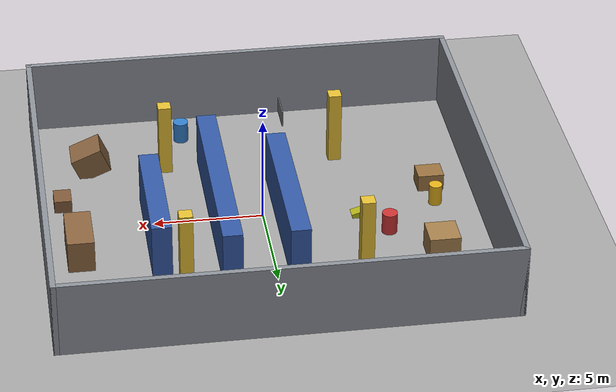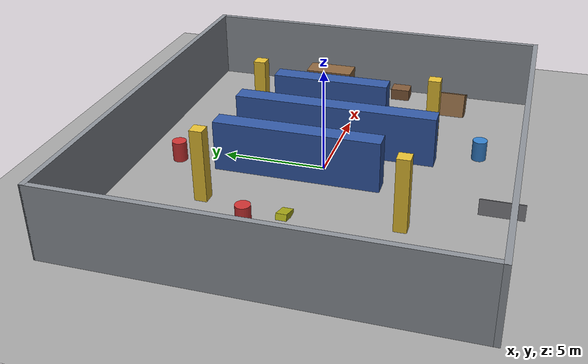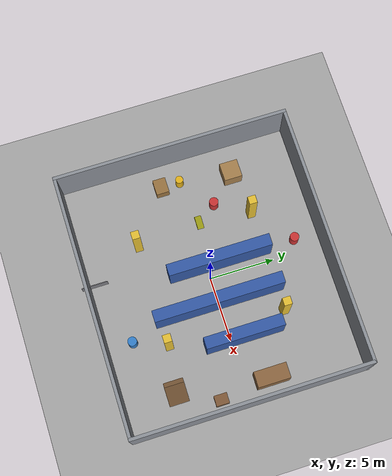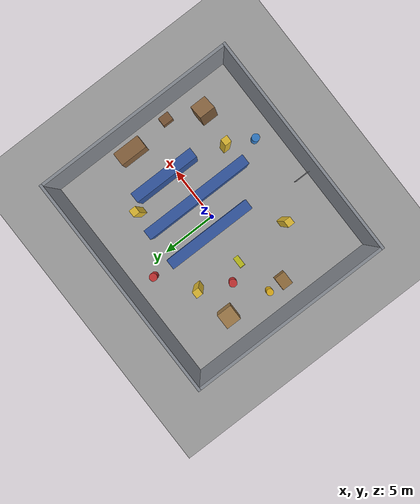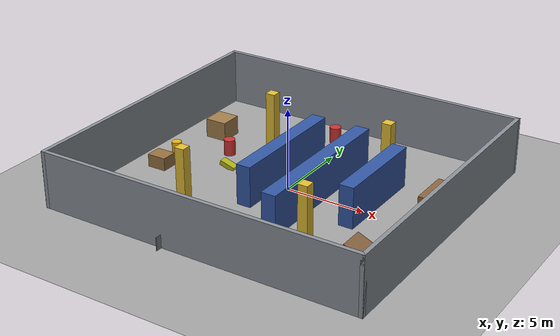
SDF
<?xml version="1.0"?>
<sdf version="1.8">
  <world name="warehouse_world">
    <physics type="ode">
      <real_time_update_rate>1000.0</real_time_update_rate>
      <max_step_size>0.001</max_step_size>
      <real_time_factor>1.0</real_time_factor>
      <ode>
        <solver>
          <type>quick</type>
          <iters>150</iters>
          <precon_iters>0</precon_iters>
          <sor>1.4</sor>
          <use_dynamic_moi_rescaling>1</use_dynamic_moi_rescaling>
        </solver>
        <constraints>
          <cfm>0.00001</cfm>
          <erp>0.2</erp>
          <contact_max_correcting_vel>2000.0</contact_max_correcting_vel>
          <contact_surface_layer>0.01</contact_surface_layer>
        </constraints>
      </ode>
    </physics>

    <!-- Essential Gazebo Plugins for Simulation -->
    <plugin filename="gz-sim-physics-system" name="gz::sim::systems::Physics"/>
    <plugin filename="gz-sim-user-commands-system" name="gz::sim::systems::UserCommands"/>
    <plugin filename="gz-sim-scene-broadcaster-system" name="gz::sim::systems::SceneBroadcaster"/>
    <plugin filename="gz-sim-sensors-system" name="gz::sim::systems::Sensors">
      <render_engine>ogre2</render_engine>
    </plugin>
    <plugin filename="gz-sim-imu-system" name="gz::sim::systems::Imu"/>

    <!-- Warehouse Overhead Lighting -->
    <light type="directional" name="warehouse_light_1">
      <cast_shadows>true</cast_shadows>
      <pose>0 0 12 0 0 0</pose>
      <diffuse>0.85 0.85 0.85 1</diffuse>
      <specular>0.2 0.2 0.2 1</specular>
      <direction>-0.3 0.2 -0.9</direction>
    </light>

    <!-- Concrete Floor Ground Plane -->
    <model name="warehouse_ground">
      <static>true</static>
      <link name="ground_link">
        <collision name="collision">
          <geometry>
            <plane>
              <normal>0 0 1</normal>
              <size>60 60</size>
            </plane>
          </geometry>
          <surface>
            <friction>
              <ode>
                <mu>100</mu>
                <mu2>50</mu2>
              </ode>
            </friction>
          </surface>
        </collision>
        <visual name="visual">
          <geometry>
            <plane>
              <normal>0 0 1</normal>
              <size>60 60</size>
            </plane>
          </geometry>
          <material>
            <ambient>0.65 0.65 0.65 1</ambient>
            <diffuse>0.65 0.65 0.65 1</diffuse>
            <specular>0.1 0.1 0.1 1</specular>
          </material>
        </visual>
      </link>
    </model>

    <!-- Warehouse Structural Layout -->
    <model name="warehouse_structure">
      <static>true</static>
      <link name="warehouse_link">

        <!-- Outer Boundary Walls (20m x 18m, 3.5m high, 0.25m thick) -->
        <!-- North Wall -->
        <collision name="wh_north_col">
          <pose>0 9.0 1.75 0 0 0</pose>
          <geometry><box><size>20.25 0.25 3.5</size></box></geometry>
        </collision>
        <visual name="wh_north_vis">
          <pose>0 9.0 1.75 0 0 0</pose>
          <geometry><box><size>20.25 0.25 3.5</size></box></geometry>
          <material><ambient>0.5 0.52 0.55 1</ambient><diffuse>0.55 0.57 0.6 1</diffuse></material>
        </visual>

        <!-- South Wall -->
        <collision name="wh_south_col">
          <pose>0 -9.0 1.75 0 0 0</pose>
          <geometry><box><size>20.25 0.25 3.5</size></box></geometry>
        </collision>
        <visual name="wh_south_vis">
          <pose>0 -9.0 1.75 0 0 0</pose>
          <geometry><box><size>20.25 0.25 3.5</size></box></geometry>
          <material><ambient>0.5 0.52 0.55 1</ambient><diffuse>0.55 0.57 0.6 1</diffuse></material>
        </visual>

        <!-- West Wall (Loading Bay Side) -->
        <collision name="wh_west_col">
          <pose>-10.0 0 1.75 0 0 0</pose>
          <geometry><box><size>0.25 18.25 3.5</size></box></geometry>
        </collision>
        <visual name="wh_west_vis">
          <pose>-10.0 0 1.75 0 0 0</pose>
          <geometry><box><size>0.25 18.25 3.5</size></box></geometry>
          <material><ambient>0.5 0.52 0.55 1</ambient><diffuse>0.55 0.57 0.6 1</diffuse></material>
        </visual>

        <!-- East Wall -->
        <collision name="wh_east_col">
          <pose>10.0 0 1.75 0 0 0</pose>
          <geometry><box><size>0.25 18.25 3.5</size></box></geometry>
        </collision>
        <visual name="wh_east_vis">
          <pose>10.0 0 1.75 0 0 0</pose>
          <geometry><box><size>0.25 18.25 3.5</size></box></geometry>
          <material><ambient>0.5 0.52 0.55 1</ambient><diffuse>0.55 0.57 0.6 1</diffuse></material>
        </visual>

        <!-- Support Concrete Columns (0.6m x 0.6m, 3.5m high) -->
        <collision name="col_1">
          <pose>-4.0 4.5 1.75 0 0 0</pose>
          <geometry><box><size>0.6 0.6 3.5</size></box></geometry>
        </collision>
        <visual name="col_1_v">
          <pose>-4.0 4.5 1.75 0 0 0</pose>
          <geometry><box><size>0.6 0.6 3.5</size></box></geometry>
          <material><ambient>0.8 0.7 0.2 1</ambient><diffuse>0.9 0.75 0.2 1</diffuse></material>
        </visual>

        <collision name="col_2">
          <pose>-4.0 -4.5 1.75 0 0 0</pose>
          <geometry><box><size>0.6 0.6 3.5</size></box></geometry>
        </collision>
        <visual name="col_2_v">
          <pose>-4.0 -4.5 1.75 0 0 0</pose>
          <geometry><box><size>0.6 0.6 3.5</size></box></geometry>
          <material><ambient>0.8 0.7 0.2 1</ambient><diffuse>0.9 0.75 0.2 1</diffuse></material>
        </visual>

        <collision name="col_3">
          <pose>4.0 4.5 1.75 0 0 0</pose>
          <geometry><box><size>0.6 0.6 3.5</size></box></geometry>
        </collision>
        <visual name="col_3_v">
          <pose>4.0 4.5 1.75 0 0 0</pose>
          <geometry><box><size>0.6 0.6 3.5</size></box></geometry>
          <material><ambient>0.8 0.7 0.2 1</ambient><diffuse>0.9 0.75 0.2 1</diffuse></material>
        </visual>

        <collision name="col_4">
          <pose>4.0 -4.5 1.75 0 0 0</pose>
          <geometry><box><size>0.6 0.6 3.5</size></box></geometry>
        </collision>
        <visual name="col_4_v">
          <pose>4.0 -4.5 1.75 0 0 0</pose>
          <geometry><box><size>0.6 0.6 3.5</size></box></geometry>
          <material><ambient>0.8 0.7 0.2 1</ambient><diffuse>0.9 0.75 0.2 1</diffuse></material>
        </visual>

        <!-- STORAGE RACKS — asymmetric lengths, staggered -->

        <!-- Rack Row 1 at x=-1.0: 8m long, shifted north (y from -3 to +5) -->
        <collision name="rack_row_1_col">
          <pose>-1.0 1.0 1.25 0 0 0</pose>
          <geometry><box><size>0.9 8.0 2.5</size></box></geometry>
        </collision>
        <visual name="rack_row_1_vis">
          <pose>-1.0 1.0 1.25 0 0 0</pose>
          <geometry><box><size>0.9 8.0 2.5</size></box></geometry>
          <material><ambient>0.15 0.25 0.5 1</ambient><diffuse>0.2 0.35 0.65 1</diffuse></material>
        </visual>

        <!-- Rack Row 2 at x=2.0: 10m long (full span, y from -5 to +5) -->
        <collision name="rack_row_2_col">
          <pose>2.0 0.0 1.25 0 0 0</pose>
          <geometry><box><size>0.9 10.0 2.5</size></box></geometry>
        </collision>
        <visual name="rack_row_2_vis">
          <pose>2.0 0.0 1.25 0 0 0</pose>
          <geometry><box><size>0.9 10.0 2.5</size></box></geometry>
          <material><ambient>0.15 0.25 0.5 1</ambient><diffuse>0.2 0.35 0.65 1</diffuse></material>
        </visual>

        <!-- Rack Row 3 at x=5.0: 6m short rack, shifted north (y from -2 to +4) -->
        <collision name="rack_row_3_col">
          <pose>5.0 1.0 1.25 0 0 0</pose>
          <geometry><box><size>0.9 6.0 2.5</size></box></geometry>
        </collision>
        <visual name="rack_row_3_vis">
          <pose>5.0 1.0 1.25 0 0 0</pose>
          <geometry><box><size>0.9 6.0 2.5</size></box></geometry>
          <material><ambient>0.15 0.25 0.5 1</ambient><diffuse>0.2 0.35 0.65 1</diffuse></material>
        </visual>

        <!-- WEST LOADING BAY — HIGH density, scattered   -->

        <!-- Pallet Stack A (near north) -->
        <collision name="pallet_A_col">
          <pose>-7.5 4.0 0.6 0 0 0</pose>
          <geometry><box><size>1.4 1.4 1.2</size></box></geometry>
        </collision>
        <visual name="pallet_A_vis">
          <pose>-7.5 4.0 0.6 0 0 0</pose>
          <geometry><box><size>1.4 1.4 1.2</size></box></geometry>
          <material><ambient>0.6 0.45 0.25 1</ambient><diffuse>0.65 0.5 0.3 1</diffuse></material>
        </visual>

        <!-- Pallet Stack B (smaller, offset south) -->
        <collision name="pallet_B_col">
          <pose>-8.0 -1.5 0.4 0 0 0</pose>
          <geometry><box><size>1.2 1.0 0.8</size></box></geometry>
        </collision>
        <visual name="pallet_B_vis">
          <pose>-8.0 -1.5 0.4 0 0 0</pose>
          <geometry><box><size>1.2 1.0 0.8</size></box></geometry>
          <material><ambient>0.55 0.4 0.2 1</ambient><diffuse>0.6 0.45 0.25 1</diffuse></material>
        </visual>

        <!-- Drum near Pallet A -->
        <collision name="drum_west_A_col">
          <pose>-5.5 2.0 0.5 0 0 0</pose>
          <geometry><cylinder><radius>0.35</radius><length>1.0</length></cylinder></geometry>
        </collision>
        <visual name="drum_west_A_vis">
          <pose>-5.5 2.0 0.5 0 0 0</pose>
          <geometry><cylinder><radius>0.35</radius><length>1.0</length></cylinder></geometry>
          <material><ambient>0.7 0.15 0.15 1</ambient><diffuse>0.8 0.2 0.2 1</diffuse></material>
        </visual>

        <!-- Pallet jack (low obstacle, east of spawn point) -->
        <collision name="pallet_jack_col">
          <pose>-4.5 0.5 0.15 0 0.3 0</pose>
          <geometry><box><size>1.0 0.5 0.3</size></box></geometry>
        </collision>
        <visual name="pallet_jack_vis">
          <pose>-4.5 0.5 0.15 0 0.3 0</pose>
          <geometry><box><size>1.0 0.5 0.3</size></box></geometry>
          <material><ambient>0.6 0.6 0.05 1</ambient><diffuse>0.7 0.7 0.1 1</diffuse></material>
        </visual>

        <!-- EAST STORAGE — MEDIUM density, varied         -->

        <!-- Crate A (large) -->
        <collision name="crate_A_col">
          <pose>8.5 2.0 0.75 0 0 0</pose>
          <geometry><box><size>1.2 2.5 1.5</size></box></geometry>
        </collision>
        <visual name="crate_A_vis">
          <pose>8.5 2.0 0.75 0 0 0</pose>
          <geometry><box><size>1.2 2.5 1.5</size></box></geometry>
          <material><ambient>0.5 0.35 0.2 1</ambient><diffuse>0.55 0.4 0.25 1</diffuse></material>
        </visual>

        <!-- Crate B (small, asymmetric) -->
        <collision name="crate_B_col">
          <pose>9.0 -2.0 0.3 0 0 0</pose>
          <geometry><box><size>0.8 1.0 0.6</size></box></geometry>
        </collision>
        <visual name="crate_B_vis">
          <pose>9.0 -2.0 0.3 0 0 0</pose>
          <geometry><box><size>0.8 1.0 0.6</size></box></geometry>
          <material><ambient>0.45 0.3 0.18 1</ambient><diffuse>0.5 0.35 0.22 1</diffuse></material>
        </visual>

        <!-- Crate C (medium, shifted from old position) -->
        <collision name="crate_C_col">
          <pose>7.5 -5.0 0.6 0 0.4 0</pose>
          <geometry><box><size>1.5 1.5 1.2</size></box></geometry>
        </collision>
        <visual name="crate_C_vis">
          <pose>7.5 -5.0 0.6 0 0.4 0</pose>
          <geometry><box><size>1.5 1.5 1.2</size></box></geometry>
          <material><ambient>0.48 0.33 0.2 1</ambient><diffuse>0.52 0.38 0.24 1</diffuse></material>
        </visual>

        <!-- PERIMETER — scattered obstacles               -->

        <!-- Drum north (repositioned) -->
        <collision name="drum_north_col">
          <pose>-1.0 7.0 0.5 0 0 0</pose>
          <geometry><cylinder><radius>0.35</radius><length>1.0</length></cylinder></geometry>
        </collision>
        <visual name="drum_north_vis">
          <pose>-1.0 7.0 0.5 0 0 0</pose>
          <geometry><cylinder><radius>0.35</radius><length>1.0</length></cylinder></geometry>
          <material><ambient>0.7 0.15 0.15 1</ambient><diffuse>0.8 0.2 0.2 1</diffuse></material>
        </visual>

        <!-- Drum south (asymmetric position) -->
        <collision name="drum_south_col">
          <pose>3.0 -7.0 0.5 0 0 0</pose>
          <geometry><cylinder><radius>0.35</radius><length>1.0</length></cylinder></geometry>
        </collision>
        <visual name="drum_south_vis">
          <pose>3.0 -7.0 0.5 0 0 0</pose>
          <geometry><cylinder><radius>0.35</radius><length>1.0</length></cylinder></geometry>
          <material><ambient>0.15 0.4 0.7 1</ambient><diffuse>0.2 0.5 0.8 1</diffuse></material>
        </visual>

        <!-- Chain barrier near south wall -->
        <collision name="chain_barrier_col">
          <pose>-2.0 -8.5 0.4 0 0 0</pose>
          <geometry><box><size>0.05 2.0 0.8</size></box></geometry>
        </collision>
        <visual name="chain_barrier_vis">
          <pose>-2.0 -8.5 0.4 0 0 0</pose>
          <geometry><box><size>0.05 2.0 0.8</size></box></geometry>
          <material><ambient>0.4 0.4 0.42 1</ambient><diffuse>0.5 0.5 0.52 1</diffuse></material>
        </visual>

        <!-- Loading dock marker in west bay -->
        <collision name="dock_marker_col">
          <pose>-8.0 0.0 0.5 0 0 0</pose>
          <geometry><cylinder><radius>0.3</radius><length>1.0</length></cylinder></geometry>
        </collision>
        <visual name="dock_marker_vis">
          <pose>-8.0 0.0 0.5 0 0 0</pose>
          <geometry><cylinder><radius>0.3</radius><length>1.0</length></cylinder></geometry>
          <material><ambient>0.8 0.6 0.0 1</ambient><diffuse>0.9 0.7 0.1 1</diffuse></material>
        </visual>

      </link>
    </model>
  </world>
</sdf>
